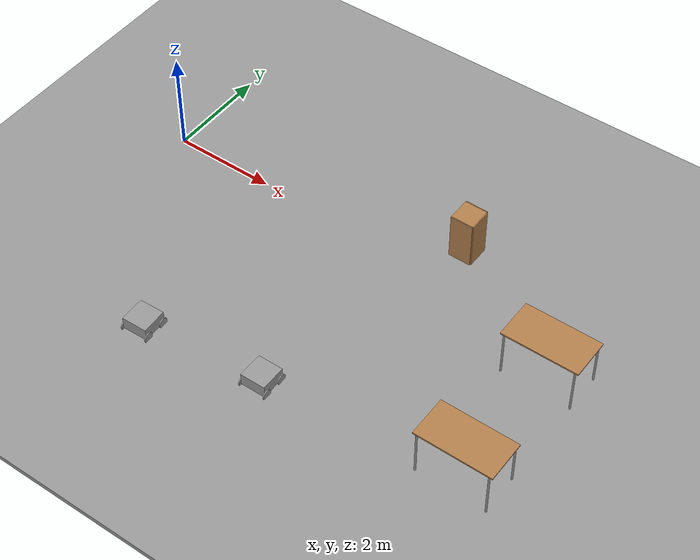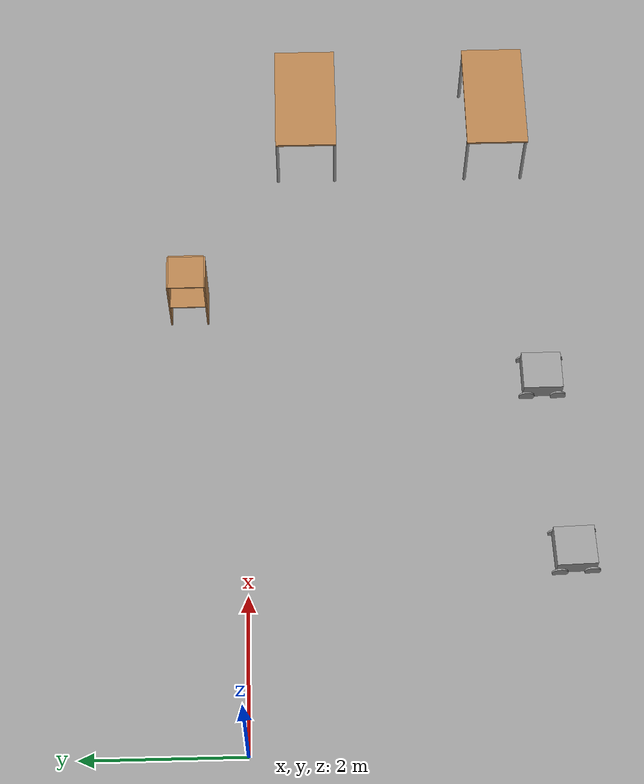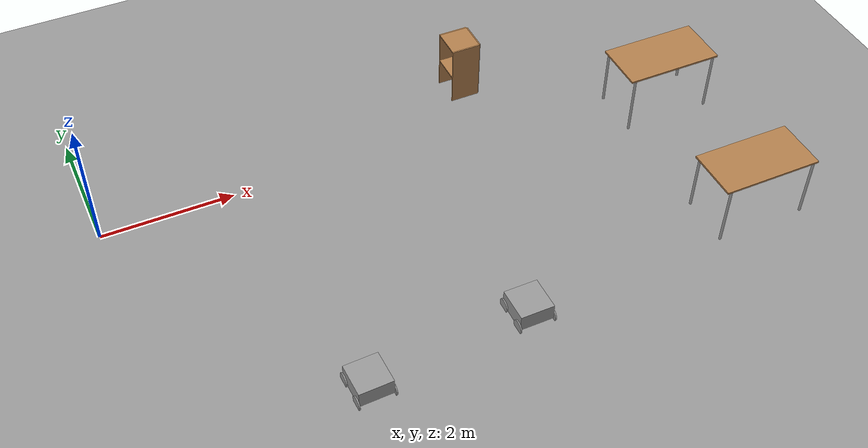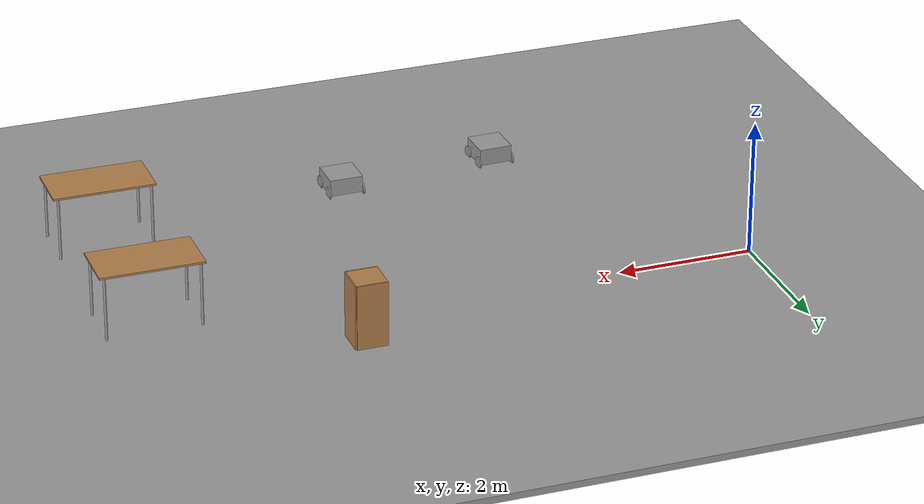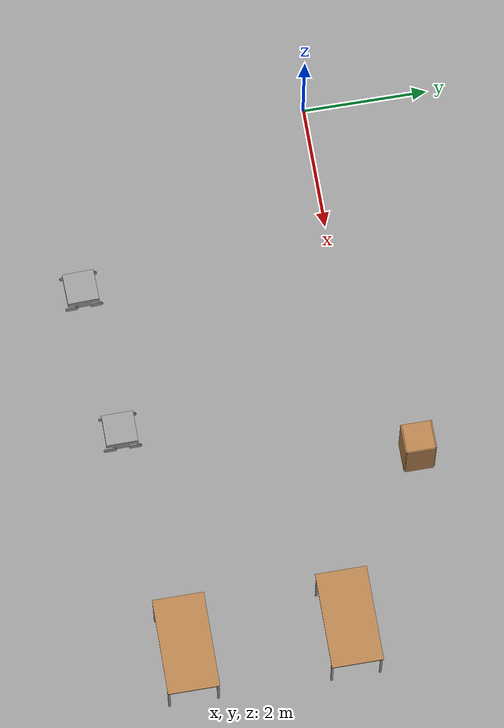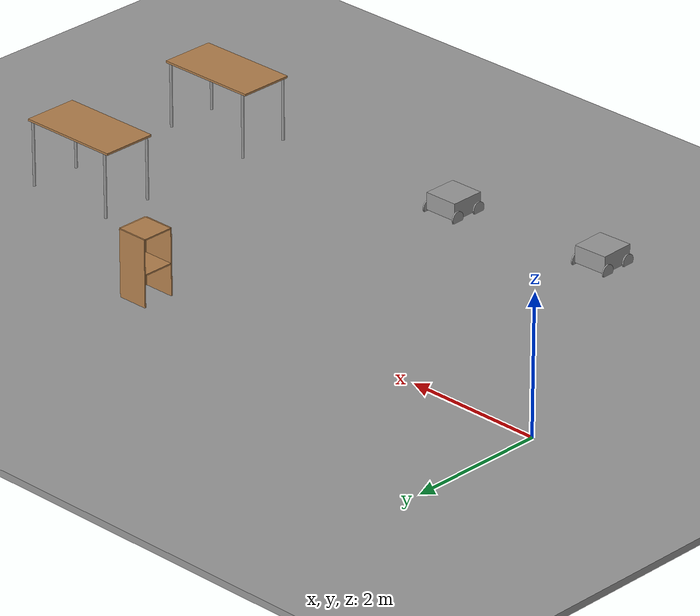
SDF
<sdf version="1.7">
 <world name="default">
  <model name="ground_plane">
   <static>1</static>
   <link name="link">
    <collision name="collision">
     <geometry><plane><normal>0 0 1</normal><size>100 100</size></plane></geometry>
     <surface>
      <contact><collide_bitmask>65535</collide_bitmask></contact>
      <friction><ode><mu>100</mu><mu2>50</mu2></ode></friction>
     </surface>
    </collision>
    <visual name="visual">
     <cast_shadows>0</cast_shadows>
     <geometry><plane><normal>0 0 1</normal><size>100 100</size></plane></geometry>
     <material>
      <script><uri>file://media/materials/scripts/gazebo.material</uri><name>Gazebo/Grey</name></script>
     </material>
    </visual>
   </link>
  </model>
  <model name="ground_plane_0">
   <static>1</static>
   <link name="link">
    <collision name="collision">
     <geometry><plane><normal>0 0 1</normal><size>100 100</size></plane></geometry>
     <surface>
      <contact><collide_bitmask>65535</collide_bitmask></contact>
      <friction><ode><mu>100</mu><mu2>50</mu2></ode></friction>
     </surface>
    </collision>
    <visual name="visual">
     <cast_shadows>0</cast_shadows>
     <geometry><plane><normal>0 0 1</normal><size>100 100</size></plane></geometry>
     <material>
      <script><uri>file://media/materials/scripts/gazebo.material</uri><name>Gazebo/Grey</name></script>
     </material>
    </visual>
   </link>
   <pose>9.22841 12.0339 0 0 -0 0</pose>
  </model>
  <model name="cabinet">
   <static>1</static>
   <link name="cabinet_bottom_plate">
    <inertial>
     <pose>0 0 -1 0 -0 0</pose>
     <inertia><ixx>2.05</ixx><ixy>0</ixy><ixz>0</ixz><iyy>2.05</iyy><iyz>0</iyz><izz>2.05</izz></inertia>
     <mass>25</mass>
    </inertial>
    <collision name="cabinet_bottom_plate_geom">
     <pose>0 0 0.01 0 -0 0</pose>
     <geometry><box><size>0.45 0.45 0.02</size></box></geometry>
    </collision>
    <visual name="cabinet_bottom_plate_geom_visual">
     <pose>0 0 0.01 0 -0 0</pose>
     <geometry><box><size>0.45 0.45 0.02</size></box></geometry>
     <material>
      <script><uri>file://media/materials/scripts/gazebo.material</uri><name>Gazebo/Wood</name></script>
     </material>
    </visual>
    <collision name="cabinet_bottom_plate_geom_cabinet_back_plate">
     <pose>0.235 0 0.51 0 -0 0</pose>
     <geometry><box><size>0.02 0.45 1.02</size></box></geometry>
    </collision>
    <visual name="cabinet_bottom_plate_geom_cabinet_back_plate_visual">
     <pose>0.235 0 0.51 0 -0 0</pose>
     <geometry><box><size>0.02 0.45 1.02</size></box></geometry>
     <material>
      <script><uri>file://media/materials/scripts/gazebo.material</uri><name>Gazebo/Wood</name></script>
     </material>
    </visual>
    <collision name="cabinet_bottom_plate_geom_cabinet_left_plate">
     <pose>0 0.235 0.51 0 -0 0</pose>
     <geometry><box><size>0.45 0.02 1.02</size></box></geometry>
    </collision>
    <visual name="cabinet_bottom_plate_geom_cabinet_left_plate_visual">
     <pose>0 0.235 0.51 0 -0 0</pose>
     <geometry><box><size>0.45 0.02 1.02</size></box></geometry>
     <material>
      <script><uri>file://media/materials/scripts/gazebo.material</uri><name>Gazebo/Wood</name></script>
     </material>
    </visual>
    <collision name="cabinet_bottom_plate_geom_cabinet_middle_plate">
     <pose>0 0 0.51 0 -0 0</pose>
     <geometry><box><size>0.45 0.45 0.02</size></box></geometry>
    </collision>
    <visual name="cabinet_bottom_plate_geom_cabinet_middle_plate_visual">
     <pose>0 0 0.51 0 -0 0</pose>
     <geometry><box><size>0.45 0.45 0.02</size></box></geometry>
     <material>
      <script><uri>file://media/materials/scripts/gazebo.material</uri><name>Gazebo/Wood</name></script>
     </material>
    </visual>
    <collision name="cabinet_bottom_plate_geom_cabinet_right_plate">
     <pose>0 -0.235 0.51 0 -0 0</pose>
     <geometry><box><size>0.45 0.02 1.02</size></box></geometry>
    </collision>
    <visual name="cabinet_bottom_plate_geom_cabinet_right_plate_visual">
     <pose>0 -0.235 0.51 0 -0 0</pose>
     <geometry><box><size>0.45 0.02 1.02</size></box></geometry>
     <material>
      <script><uri>file://media/materials/scripts/gazebo.material</uri><name>Gazebo/Wood</name></script>
     </material>
    </visual>
    <collision name="cabinet_bottom_plate_geom_cabinet_top_plate">
     <pose>0 0 1.01 0 -0 0</pose>
     <geometry><box><size>0.45 0.45 0.02</size></box></geometry>
    </collision>
    <visual name="cabinet_bottom_plate_geom_cabinet_top_plate_visual">
     <pose>0 0 1.01 0 -0 0</pose>
     <geometry><box><size>0.45 0.45 0.02</size></box></geometry>
     <material>
      <script><uri>file://media/materials/scripts/gazebo.material</uri><name>Gazebo/Wood</name></script>
     </material>
    </visual>
   </link>
   <pose>6.0025 0.743217 0 0 -0 0</pose>
  </model>
  <model name="table">
   <static>1</static>
   <link name="link">
    <collision name="surface">
     <pose>0 0 1 0 -0 0</pose>
     <geometry><box><size>1.5 0.8 0.03</size></box></geometry>
     <surface><friction><ode><mu>0.6</mu><mu2>0.6</mu2></ode></friction></surface>
    </collision>
    <visual name="visual1">
     <pose>0 0 1 0 -0 0</pose>
     <geometry><box><size>1.5 0.8 0.03</size></box></geometry>
     <material>
      <script><uri>file://media/materials/scripts/gazebo.material</uri><name>Gazebo/Wood</name></script>
     </material>
    </visual>
    <collision name="front_left_leg">
     <pose>0.68 0.38 0.5 0 -0 0</pose>
     <geometry><cylinder><radius>0.02</radius><length>1</length></cylinder></geometry>
    </collision>
    <visual name="front_left_leg">
     <pose>0.68 0.38 0.5 0 -0 0</pose>
     <geometry><cylinder><radius>0.02</radius><length>1</length></cylinder></geometry>
     <material>
      <script><uri>file://media/materials/scripts/gazebo.material</uri><name>Gazebo/Grey</name></script>
     </material>
    </visual>
    <collision name="front_right_leg">
     <pose>0.68 -0.38 0.5 0 -0 0</pose>
     <geometry><cylinder><radius>0.02</radius><length>1</length></cylinder></geometry>
    </collision>
    <visual name="front_right_leg">
     <pose>0.68 -0.38 0.5 0 -0 0</pose>
     <geometry><cylinder><radius>0.02</radius><length>1</length></cylinder></geometry>
     <material>
      <script><uri>file://media/materials/scripts/gazebo.material</uri><name>Gazebo/Grey</name></script>
     </material>
    </visual>
    <collision name="back_right_leg">
     <pose>-0.68 -0.38 0.5 0 -0 0</pose>
     <geometry><cylinder><radius>0.02</radius><length>1</length></cylinder></geometry>
    </collision>
    <visual name="back_right_leg">
     <pose>-0.68 -0.38 0.5 0 -0 0</pose>
     <geometry><cylinder><radius>0.02</radius><length>1</length></cylinder></geometry>
     <material>
      <script><uri>file://media/materials/scripts/gazebo.material</uri><name>Gazebo/Grey</name></script>
     </material>
    </visual>
    <collision name="back_left_leg">
     <pose>-0.68 0.38 0.5 0 -0 0</pose>
     <geometry><cylinder><radius>0.02</radius><length>1</length></cylinder></geometry>
    </collision>
    <visual name="back_left_leg">
     <pose>-0.68 0.38 0.5 0 -0 0</pose>
     <geometry><cylinder><radius>0.02</radius><length>1</length></cylinder></geometry>
     <material>
      <script><uri>file://media/materials/scripts/gazebo.material</uri><name>Gazebo/Grey</name></script>
     </material>
    </visual>
   </link>
   <pose>8.6565 -0.81394 0 0 -0 0</pose>
  </model>
  <model name="table_0">
   <static>1</static>
   <link name="link">
    <collision name="surface">
     <pose>0 0 1 0 -0 0</pose>
     <geometry><box><size>1.5 0.8 0.03</size></box></geometry>
     <surface><friction><ode><mu>0.6</mu><mu2>0.6</mu2></ode></friction></surface>
    </collision>
    <visual name="visual1">
     <pose>0 0 1 0 -0 0</pose>
     <geometry><box><size>1.5 0.8 0.03</size></box></geometry>
     <material>
      <script><uri>file://media/materials/scripts/gazebo.material</uri><name>Gazebo/Wood</name></script>
     </material>
    </visual>
    <collision name="front_left_leg">
     <pose>0.68 0.38 0.5 0 -0 0</pose>
     <geometry><cylinder><radius>0.02</radius><length>1</length></cylinder></geometry>
    </collision>
    <visual name="front_left_leg">
     <pose>0.68 0.38 0.5 0 -0 0</pose>
     <geometry><cylinder><radius>0.02</radius><length>1</length></cylinder></geometry>
     <material>
      <script><uri>file://media/materials/scripts/gazebo.material</uri><name>Gazebo/Grey</name></script>
     </material>
    </visual>
    <collision name="front_right_leg">
     <pose>0.68 -0.38 0.5 0 -0 0</pose>
     <geometry><cylinder><radius>0.02</radius><length>1</length></cylinder></geometry>
    </collision>
    <visual name="front_right_leg">
     <pose>0.68 -0.38 0.5 0 -0 0</pose>
     <geometry><cylinder><radius>0.02</radius><length>1</length></cylinder></geometry>
     <material>
      <script><uri>file://media/materials/scripts/gazebo.material</uri><name>Gazebo/Grey</name></script>
     </material>
    </visual>
    <collision name="back_right_leg">
     <pose>-0.68 -0.38 0.5 0 -0 0</pose>
     <geometry><cylinder><radius>0.02</radius><length>1</length></cylinder></geometry>
    </collision>
    <visual name="back_right_leg">
     <pose>-0.68 -0.38 0.5 0 -0 0</pose>
     <geometry><cylinder><radius>0.02</radius><length>1</length></cylinder></geometry>
     <material>
      <script><uri>file://media/materials/scripts/gazebo.material</uri><name>Gazebo/Grey</name></script>
     </material>
    </visual>
    <collision name="back_left_leg">
     <pose>-0.68 0.38 0.5 0 -0 0</pose>
     <geometry><cylinder><radius>0.02</radius><length>1</length></cylinder></geometry>
    </collision>
    <visual name="back_left_leg">
     <pose>-0.68 0.38 0.5 0 -0 0</pose>
     <geometry><cylinder><radius>0.02</radius><length>1</length></cylinder></geometry>
     <material>
      <script><uri>file://media/materials/scripts/gazebo.material</uri><name>Gazebo/Grey</name></script>
     </material>
    </visual>
   </link>
   <pose>8.64335 -3.33372 0 0 -0 0</pose>
  </model>
  <model name="four_wheeled_robot">
   <link name="link_2">
    <inertial>
     <mass>1</mass>
     <inertia>
      <ixx>0.166667</ixx>
      <ixy>0</ixy>
      <ixz>0</ixz>
      <iyy>0.166667</iyy>
      <iyz>0</iyz>
      <izz>0.166667</izz>
     </inertia>
    </inertial>
    <pose>-9.6e-05 0 0.05 0 -0 0</pose>
    <visual name="visual">
     <geometry><box><size>0.5 0.5 0.25</size></box></geometry>
     <material>
      <lighting>1</lighting>
      <script><uri>file://media/materials/scripts/gazebo.material</uri><name>Gazebo/Grey</name></script>
      <shader type="pixel"><normal_map>__default__</normal_map></shader>
      <ambient>0.3 0.3 0.3 1</ambient>
      <diffuse>0.7 0.7 0.7 1</diffuse>
      <specular>0.01 0.01 0.01 1</specular>
      <emissive>0 0 0 1</emissive>
     </material>
    </visual>
    <collision name="collision">
     <geometry><box><size>0.5 0.5 0.25</size></box></geometry>
     <surface>
      <friction>
       <ode><mu>1</mu><mu2>1</mu2><fdir1>0 0 0</fdir1><slip1>0</slip1><slip2>0</slip2></ode>
       <torsional>
        <coefficient>1</coefficient>
        <patch_radius>0</patch_radius>
        <surface_radius>0</surface_radius>
        <use_patch_radius>1</use_patch_radius>
        <ode><slip>0</slip></ode>
       </torsional>
      </friction>
      <bounce><restitution_coefficient>0</restitution_coefficient><threshold>1e+06</threshold></bounce>
      <contact>
       <collide_without_contact>0</collide_without_contact>
       <collide_without_contact_bitmask>1</collide_without_contact_bitmask>
       <collide_bitmask>1</collide_bitmask>
       <ode>
        <soft_cfm>0</soft_cfm>
        <soft_erp>0.2</soft_erp>
        <kp>1e+13</kp>
        <kd>1</kd>
        <max_vel>0.01</max_vel>
        <min_depth>0</min_depth>
       </ode>
       <bullet>
        <split_impulse>1</split_impulse>
        <split_impulse_penetration_threshold>-0.01</split_impulse_penetration_threshold>
        <soft_cfm>0</soft_cfm>
        <soft_erp>0.2</soft_erp>
        <kp>1e+13</kp>
        <kd>1</kd>
       </bullet>
      </contact>
     </surface>
    </collision>
   </link>
   <link name="link_3">
    <inertial>
     <mass>1</mass>
     <inertia><ixx>0.145833</ixx><ixy>0</ixy><ixz>0</ixz><iyy>0.145833</iyy><iyz>0</iyz><izz>0.125</izz></inertia>
    </inertial>
    <pose>0.260404 -0.2 -0.05 1.5707 0 1.5707</pose>
    <visual name="visual">
     <geometry><cylinder><radius>0.1</radius><length>0.02</length></cylinder></geometry>
     <material>
      <lighting>1</lighting>
      <script><uri>file://media/materials/scripts/gazebo.material</uri><name>Gazebo/Grey</name></script>
      <shader type="pixel"><normal_map>__default__</normal_map></shader>
      <ambient>0.3 0.3 0.3 1</ambient>
      <diffuse>0.7 0.7 0.7 1</diffuse>
      <specular>0.01 0.01 0.01 1</specular>
      <emissive>0 0 0 1</emissive>
     </material>
    </visual>
    <collision name="collision">
     <geometry><cylinder><radius>0.1</radius><length>0.02</length></cylinder></geometry>
     <surface>
      <friction>
       <ode><mu>1</mu><mu2>1</mu2><fdir1>0 0 0</fdir1><slip1>0</slip1><slip2>0</slip2></ode>
       <torsional>
        <coefficient>1</coefficient>
        <patch_radius>0</patch_radius>
        <surface_radius>0</surface_radius>
        <use_patch_radius>1</use_patch_radius>
        <ode><slip>0</slip></ode>
       </torsional>
      </friction>
      <bounce><restitution_coefficient>0</restitution_coefficient><threshold>1e+06</threshold></bounce>
      <contact>
       <collide_without_contact>0</collide_without_contact>
       <collide_without_contact_bitmask>1</collide_without_contact_bitmask>
       <collide_bitmask>1</collide_bitmask>
       <ode>
        <soft_cfm>0</soft_cfm>
        <soft_erp>0.2</soft_erp>
        <kp>1e+13</kp>
        <kd>1</kd>
        <max_vel>0.01</max_vel>
        <min_depth>0</min_depth>
       </ode>
       <bullet>
        <split_impulse>1</split_impulse>
        <split_impulse_penetration_threshold>-0.01</split_impulse_penetration_threshold>
        <soft_cfm>0</soft_cfm>
        <soft_erp>0.2</soft_erp>
        <kp>1e+13</kp>
        <kd>1</kd>
       </bullet>
      </contact>
     </surface>
    </collision>
   </link>
   <link name="link_3_clone">
    <inertial>
     <mass>1</mass>
     <inertia><ixx>0.145833</ixx><ixy>0</ixy><ixz>0</ixz><iyy>0.145833</iyy><iyz>0</iyz><izz>0.125</izz></inertia>
    </inertial>
    <pose>-0.260115 0.2 -0.05 1.5707 0 1.5707</pose>
    <visual name="visual">
     <geometry><cylinder><radius>0.1</radius><length>0.02</length></cylinder></geometry>
     <material>
      <lighting>1</lighting>
      <script><uri>file://media/materials/scripts/gazebo.material</uri><name>Gazebo/Grey</name></script>
      <shader type="pixel"><normal_map>__default__</normal_map></shader>
      <ambient>0.3 0.3 0.3 1</ambient>
      <diffuse>0.7 0.7 0.7 1</diffuse>
      <specular>0.01 0.01 0.01 1</specular>
      <emissive>0 0 0 1</emissive>
     </material>
    </visual>
    <collision name="collision">
     <geometry><cylinder><radius>0.1</radius><length>0.02</length></cylinder></geometry>
     <surface>
      <friction>
       <ode><mu>1</mu><mu2>1</mu2><fdir1>0 0 0</fdir1><slip1>0</slip1><slip2>0</slip2></ode>
       <torsional>
        <coefficient>1</coefficient>
        <patch_radius>0</patch_radius>
        <surface_radius>0</surface_radius>
        <use_patch_radius>1</use_patch_radius>
        <ode><slip>0</slip></ode>
       </torsional>
      </friction>
      <bounce><restitution_coefficient>0</restitution_coefficient><threshold>1e+06</threshold></bounce>
      <contact>
       <collide_without_contact>0</collide_without_contact>
       <collide_without_contact_bitmask>1</collide_without_contact_bitmask>
       <collide_bitmask>1</collide_bitmask>
       <ode>
        <soft_cfm>0</soft_cfm>
        <soft_erp>0.2</soft_erp>
        <kp>1e+13</kp>
        <kd>1</kd>
        <max_vel>0.01</max_vel>
        <min_depth>0</min_depth>
       </ode>
       <bullet>
        <split_impulse>1</split_impulse>
        <split_impulse_penetration_threshold>-0.01</split_impulse_penetration_threshold>
        <soft_cfm>0</soft_cfm>
        <soft_erp>0.2</soft_erp>
        <kp>1e+13</kp>
        <kd>1</kd>
       </bullet>
      </contact>
     </surface>
    </collision>
   </link>
   <link name="link_3_clone_0">
    <inertial>
     <mass>1</mass>
     <inertia><ixx>0.145833</ixx><ixy>0</ixy><ixz>0</ixz><iyy>0.145833</iyy><iyz>0</iyz><izz>0.125</izz></inertia>
    </inertial>
    <pose>-0.260115 -0.2 -0.05 1.5707 0 1.5707</pose>
    <visual name="visual">
     <geometry><cylinder><radius>0.1</radius><length>0.02</length></cylinder></geometry>
     <material>
      <lighting>1</lighting>
      <script><uri>file://media/materials/scripts/gazebo.material</uri><name>Gazebo/Grey</name></script>
      <shader type="pixel"><normal_map>__default__</normal_map></shader>
      <ambient>0.3 0.3 0.3 1</ambient>
      <diffuse>0.7 0.7 0.7 1</diffuse>
      <specular>0.01 0.01 0.01 1</specular>
      <emissive>0 0 0 1</emissive>
     </material>
    </visual>
    <collision name="collision">
     <geometry><cylinder><radius>0.1</radius><length>0.02</length></cylinder></geometry>
     <surface>
      <friction>
       <ode><mu>1</mu><mu2>1</mu2><fdir1>0 0 0</fdir1><slip1>0</slip1><slip2>0</slip2></ode>
       <torsional>
        <coefficient>1</coefficient>
        <patch_radius>0</patch_radius>
        <surface_radius>0</surface_radius>
        <use_patch_radius>1</use_patch_radius>
        <ode><slip>0</slip></ode>
       </torsional>
      </friction>
      <bounce><restitution_coefficient>0</restitution_coefficient><threshold>1e+06</threshold></bounce>
      <contact>
       <collide_without_contact>0</collide_without_contact>
       <collide_without_contact_bitmask>1</collide_without_contact_bitmask>
       <collide_bitmask>1</collide_bitmask>
       <ode>
        <soft_cfm>0</soft_cfm>
        <soft_erp>0.2</soft_erp>
        <kp>1e+13</kp>
        <kd>1</kd>
        <max_vel>0.01</max_vel>
        <min_depth>0</min_depth>
       </ode>
       <bullet>
        <split_impulse>1</split_impulse>
        <split_impulse_penetration_threshold>-0.01</split_impulse_penetration_threshold>
        <soft_cfm>0</soft_cfm>
        <soft_erp>0.2</soft_erp>
        <kp>1e+13</kp>
        <kd>1</kd>
       </bullet>
      </contact>
     </surface>
    </collision>
   </link>
   <link name="link_3_clone_1">
    <inertial>
     <mass>1</mass>
     <inertia><ixx>0.145833</ixx><ixy>0</ixy><ixz>0</ixz><iyy>0.145833</iyy><iyz>0</iyz><izz>0.125</izz></inertia>
    </inertial>
    <pose>0.259923 0.2 -0.05 1.5707 0 1.5707</pose>
    <visual name="visual">
     <geometry><cylinder><radius>0.1</radius><length>0.02</length></cylinder></geometry>
     <material>
      <lighting>1</lighting>
      <script><uri>file://media/materials/scripts/gazebo.material</uri><name>Gazebo/Grey</name></script>
      <shader type="pixel"><normal_map>__default__</normal_map></shader>
      <ambient>0.3 0.3 0.3 1</ambient>
      <diffuse>0.7 0.7 0.7 1</diffuse>
      <specular>0.01 0.01 0.01 1</specular>
      <emissive>0 0 0 1</emissive>
     </material>
    </visual>
    <collision name="collision">
     <geometry><cylinder><radius>0.1</radius><length>0.02</length></cylinder></geometry>
     <surface>
      <friction>
       <ode><mu>1</mu><mu2>1</mu2><fdir1>0 0 0</fdir1><slip1>0</slip1><slip2>0</slip2></ode>
       <torsional>
        <coefficient>1</coefficient>
        <patch_radius>0</patch_radius>
        <surface_radius>0</surface_radius>
        <use_patch_radius>1</use_patch_radius>
        <ode><slip>0</slip></ode>
       </torsional>
      </friction>
      <bounce><restitution_coefficient>0</restitution_coefficient><threshold>1e+06</threshold></bounce>
      <contact>
       <collide_without_contact>0</collide_without_contact>
       <collide_without_contact_bitmask>1</collide_without_contact_bitmask>
       <collide_bitmask>1</collide_bitmask>
       <ode>
        <soft_cfm>0</soft_cfm>
        <soft_erp>0.2</soft_erp>
        <kp>1e+13</kp>
        <kd>1</kd>
        <max_vel>0.01</max_vel>
        <min_depth>0</min_depth>
       </ode>
       <bullet>
        <split_impulse>1</split_impulse>
        <split_impulse_penetration_threshold>-0.01</split_impulse_penetration_threshold>
        <soft_cfm>0</soft_cfm>
        <soft_erp>0.2</soft_erp>
        <kp>1e+13</kp>
        <kd>1</kd>
       </bullet>
      </contact>
     </surface>
    </collision>
   </link>
   <joint name="link_2_JOINT_0" type="revolute">
    <parent>link_2</parent>
    <child>link_3</child>
    <axis>
     <xyz>0 0 1</xyz>
     <limit>
      <lower>-1.79769e+308</lower>
      <upper>1.79769e+308</upper>
      <effort>-1</effort>
      <velocity>-1</velocity>
     </limit>
     <dynamics>
      <spring_reference>0</spring_reference>
      <spring_stiffness>0</spring_stiffness>
      <damping>0</damping>
      <friction>0</friction>
     </dynamics>
    </axis>
    <physics>
     <ode><limit><cfm>0</cfm><erp>0.2</erp></limit><suspension><cfm>0</cfm><erp>0.2</erp></suspension></ode>
    </physics>
   </joint>
   <joint name="link_2_JOINT_1" type="revolute">
    <parent>link_2</parent>
    <child>link_3_clone_1</child>
    <axis>
     <xyz>0 0 1</xyz>
     <limit>
      <lower>-1.79769e+308</lower>
      <upper>1.79769e+308</upper>
      <effort>-1</effort>
      <velocity>-1</velocity>
     </limit>
     <dynamics>
      <spring_reference>0</spring_reference>
      <spring_stiffness>0</spring_stiffness>
      <damping>0</damping>
      <friction>0</friction>
     </dynamics>
    </axis>
    <physics>
     <ode><limit><cfm>0</cfm><erp>0.2</erp></limit><suspension><cfm>0</cfm><erp>0.2</erp></suspension></ode>
    </physics>
   </joint>
   <joint name="link_2_JOINT_2" type="revolute">
    <parent>link_2</parent>
    <child>link_3_clone_0</child>
    <axis>
     <xyz>0 0 1</xyz>
     <limit>
      <lower>-1.79769e+308</lower>
      <upper>1.79769e+308</upper>
      <effort>-1</effort>
      <velocity>-1</velocity>
     </limit>
     <dynamics>
      <spring_reference>0</spring_reference>
      <spring_stiffness>0</spring_stiffness>
      <damping>0</damping>
     </dynamics>
    </axis>
    <physics>
     <ode><limit><cfm>0</cfm><erp>0.2</erp></limit><suspension><cfm>0</cfm><erp>0.2</erp></suspension></ode>
    </physics>
   </joint>
   <joint name="link_2_JOINT_3" type="revolute">
    <parent>link_2</parent>
    <child>link_3_clone</child>
    <axis>
     <xyz>0 0 1</xyz>
     <limit>
      <lower>-1.79769e+308</lower>
      <upper>1.79769e+308</upper>
      <effort>-1</effort>
      <velocity>-1</velocity>
     </limit>
     <dynamics>
      <spring_reference>0</spring_reference>
      <spring_stiffness>0</spring_stiffness>
      <damping>0</damping>
     </dynamics>
    </axis>
    <physics>
     <ode><limit><cfm>0</cfm><erp>0.2</erp></limit><suspension><cfm>0</cfm><erp>0.2</erp></suspension></ode>
    </physics>
   </joint>
   <static>0</static>
   <pose>4.87152 -3.76249 0.15 7e-06 -0 0.006117</pose>
  </model>
  <model name="four_wheeled_robot_0">
   <link name="link_2">
    <inertial>
     <mass>1</mass>
     <inertia>
      <ixx>0.166667</ixx>
      <ixy>0</ixy>
      <ixz>0</ixz>
      <iyy>0.166667</iyy>
      <iyz>0</iyz>
      <izz>0.166667</izz>
     </inertia>
    </inertial>
    <pose>-9.6e-05 0 0.05 0 -0 0</pose>
    <visual name="visual">
     <geometry><box><size>0.5 0.5 0.25</size></box></geometry>
     <material>
      <lighting>1</lighting>
      <script><uri>file://media/materials/scripts/gazebo.material</uri><name>Gazebo/Grey</name></script>
      <shader type="pixel"><normal_map>__default__</normal_map></shader>
      <ambient>0.3 0.3 0.3 1</ambient>
      <diffuse>0.7 0.7 0.7 1</diffuse>
      <specular>0.01 0.01 0.01 1</specular>
      <emissive>0 0 0 1</emissive>
     </material>
    </visual>
    <collision name="collision">
     <geometry><box><size>0.5 0.5 0.25</size></box></geometry>
     <surface>
      <friction>
       <ode><mu>1</mu><mu2>1</mu2><fdir1>0 0 0</fdir1><slip1>0</slip1><slip2>0</slip2></ode>
       <torsional>
        <coefficient>1</coefficient>
        <patch_radius>0</patch_radius>
        <surface_radius>0</surface_radius>
        <use_patch_radius>1</use_patch_radius>
        <ode><slip>0</slip></ode>
       </torsional>
      </friction>
      <bounce><restitution_coefficient>0</restitution_coefficient><threshold>1e+06</threshold></bounce>
      <contact>
       <collide_without_contact>0</collide_without_contact>
       <collide_without_contact_bitmask>1</collide_without_contact_bitmask>
       <collide_bitmask>1</collide_bitmask>
       <ode>
        <soft_cfm>0</soft_cfm>
        <soft_erp>0.2</soft_erp>
        <kp>1e+13</kp>
        <kd>1</kd>
        <max_vel>0.01</max_vel>
        <min_depth>0</min_depth>
       </ode>
       <bullet>
        <split_impulse>1</split_impulse>
        <split_impulse_penetration_threshold>-0.01</split_impulse_penetration_threshold>
        <soft_cfm>0</soft_cfm>
        <soft_erp>0.2</soft_erp>
        <kp>1e+13</kp>
        <kd>1</kd>
       </bullet>
      </contact>
     </surface>
    </collision>
   </link>
   <link name="link_3">
    <inertial>
     <mass>1</mass>
     <inertia><ixx>0.145833</ixx><ixy>0</ixy><ixz>0</ixz><iyy>0.145833</iyy><iyz>0</iyz><izz>0.125</izz></inertia>
    </inertial>
    <pose>0.260404 -0.2 -0.05 1.5707 0 1.5707</pose>
    <visual name="visual">
     <geometry><cylinder><radius>0.1</radius><length>0.02</length></cylinder></geometry>
     <material>
      <lighting>1</lighting>
      <script><uri>file://media/materials/scripts/gazebo.material</uri><name>Gazebo/Grey</name></script>
      <shader type="pixel"><normal_map>__default__</normal_map></shader>
      <ambient>0.3 0.3 0.3 1</ambient>
      <diffuse>0.7 0.7 0.7 1</diffuse>
      <specular>0.01 0.01 0.01 1</specular>
      <emissive>0 0 0 1</emissive>
     </material>
    </visual>
    <collision name="collision">
     <geometry><cylinder><radius>0.1</radius><length>0.02</length></cylinder></geometry>
     <surface>
      <friction>
       <ode><mu>1</mu><mu2>1</mu2><fdir1>0 0 0</fdir1><slip1>0</slip1><slip2>0</slip2></ode>
       <torsional>
        <coefficient>1</coefficient>
        <patch_radius>0</patch_radius>
        <surface_radius>0</surface_radius>
        <use_patch_radius>1</use_patch_radius>
        <ode><slip>0</slip></ode>
       </torsional>
      </friction>
      <bounce><restitution_coefficient>0</restitution_coefficient><threshold>1e+06</threshold></bounce>
      <contact>
       <collide_without_contact>0</collide_without_contact>
       <collide_without_contact_bitmask>1</collide_without_contact_bitmask>
       <collide_bitmask>1</collide_bitmask>
       <ode>
        <soft_cfm>0</soft_cfm>
        <soft_erp>0.2</soft_erp>
        <kp>1e+13</kp>
        <kd>1</kd>
        <max_vel>0.01</max_vel>
        <min_depth>0</min_depth>
       </ode>
       <bullet>
        <split_impulse>1</split_impulse>
        <split_impulse_penetration_threshold>-0.01</split_impulse_penetration_threshold>
        <soft_cfm>0</soft_cfm>
        <soft_erp>0.2</soft_erp>
        <kp>1e+13</kp>
        <kd>1</kd>
       </bullet>
      </contact>
     </surface>
    </collision>
   </link>
   <link name="link_3_clone">
    <inertial>
     <mass>1</mass>
     <inertia><ixx>0.145833</ixx><ixy>0</ixy><ixz>0</ixz><iyy>0.145833</iyy><iyz>0</iyz><izz>0.125</izz></inertia>
    </inertial>
    <pose>-0.260115 0.2 -0.05 1.5707 0 1.5707</pose>
    <visual name="visual">
     <geometry><cylinder><radius>0.1</radius><length>0.02</length></cylinder></geometry>
     <material>
      <lighting>1</lighting>
      <script><uri>file://media/materials/scripts/gazebo.material</uri><name>Gazebo/Grey</name></script>
      <shader type="pixel"><normal_map>__default__</normal_map></shader>
      <ambient>0.3 0.3 0.3 1</ambient>
      <diffuse>0.7 0.7 0.7 1</diffuse>
      <specular>0.01 0.01 0.01 1</specular>
      <emissive>0 0 0 1</emissive>
     </material>
    </visual>
    <collision name="collision">
     <geometry><cylinder><radius>0.1</radius><length>0.02</length></cylinder></geometry>
     <surface>
      <friction>
       <ode><mu>1</mu><mu2>1</mu2><fdir1>0 0 0</fdir1><slip1>0</slip1><slip2>0</slip2></ode>
       <torsional>
        <coefficient>1</coefficient>
        <patch_radius>0</patch_radius>
        <surface_radius>0</surface_radius>
        <use_patch_radius>1</use_patch_radius>
        <ode><slip>0</slip></ode>
       </torsional>
      </friction>
      <bounce><restitution_coefficient>0</restitution_coefficient><threshold>1e+06</threshold></bounce>
      <contact>
       <collide_without_contact>0</collide_without_contact>
       <collide_without_contact_bitmask>1</collide_without_contact_bitmask>
       <collide_bitmask>1</collide_bitmask>
       <ode>
        <soft_cfm>0</soft_cfm>
        <soft_erp>0.2</soft_erp>
        <kp>1e+13</kp>
        <kd>1</kd>
        <max_vel>0.01</max_vel>
        <min_depth>0</min_depth>
       </ode>
       <bullet>
        <split_impulse>1</split_impulse>
        <split_impulse_penetration_threshold>-0.01</split_impulse_penetration_threshold>
        <soft_cfm>0</soft_cfm>
        <soft_erp>0.2</soft_erp>
        <kp>1e+13</kp>
        <kd>1</kd>
       </bullet>
      </contact>
     </surface>
    </collision>
   </link>
   <link name="link_3_clone_0">
    <inertial>
     <mass>1</mass>
     <inertia><ixx>0.145833</ixx><ixy>0</ixy><ixz>0</ixz><iyy>0.145833</iyy><iyz>0</iyz><izz>0.125</izz></inertia>
    </inertial>
    <pose>-0.260115 -0.2 -0.05 1.5707 0 1.5707</pose>
    <visual name="visual">
     <geometry><cylinder><radius>0.1</radius><length>0.02</length></cylinder></geometry>
     <material>
      <lighting>1</lighting>
      <script><uri>file://media/materials/scripts/gazebo.material</uri><name>Gazebo/Grey</name></script>
      <shader type="pixel"><normal_map>__default__</normal_map></shader>
      <ambient>0.3 0.3 0.3 1</ambient>
      <diffuse>0.7 0.7 0.7 1</diffuse>
      <specular>0.01 0.01 0.01 1</specular>
      <emissive>0 0 0 1</emissive>
     </material>
    </visual>
    <collision name="collision">
     <geometry><cylinder><radius>0.1</radius><length>0.02</length></cylinder></geometry>
     <surface>
      <friction>
       <ode><mu>1</mu><mu2>1</mu2><fdir1>0 0 0</fdir1><slip1>0</slip1><slip2>0</slip2></ode>
       <torsional>
        <coefficient>1</coefficient>
        <patch_radius>0</patch_radius>
        <surface_radius>0</surface_radius>
        <use_patch_radius>1</use_patch_radius>
        <ode><slip>0</slip></ode>
       </torsional>
      </friction>
      <bounce><restitution_coefficient>0</restitution_coefficient><threshold>1e+06</threshold></bounce>
      <contact>
       <collide_without_contact>0</collide_without_contact>
       <collide_without_contact_bitmask>1</collide_without_contact_bitmask>
       <collide_bitmask>1</collide_bitmask>
       <ode>
        <soft_cfm>0</soft_cfm>
        <soft_erp>0.2</soft_erp>
        <kp>1e+13</kp>
        <kd>1</kd>
        <max_vel>0.01</max_vel>
        <min_depth>0</min_depth>
       </ode>
       <bullet>
        <split_impulse>1</split_impulse>
        <split_impulse_penetration_threshold>-0.01</split_impulse_penetration_threshold>
        <soft_cfm>0</soft_cfm>
        <soft_erp>0.2</soft_erp>
        <kp>1e+13</kp>
        <kd>1</kd>
       </bullet>
      </contact>
     </surface>
    </collision>
   </link>
   <link name="link_3_clone_1">
    <inertial>
     <mass>1</mass>
     <inertia><ixx>0.145833</ixx><ixy>0</ixy><ixz>0</ixz><iyy>0.145833</iyy><iyz>0</iyz><izz>0.125</izz></inertia>
    </inertial>
    <pose>0.259923 0.2 -0.05 1.5707 0 1.5707</pose>
    <visual name="visual">
     <geometry><cylinder><radius>0.1</radius><length>0.02</length></cylinder></geometry>
     <material>
      <lighting>1</lighting>
      <script><uri>file://media/materials/scripts/gazebo.material</uri><name>Gazebo/Grey</name></script>
      <shader type="pixel"><normal_map>__default__</normal_map></shader>
      <ambient>0.3 0.3 0.3 1</ambient>
      <diffuse>0.7 0.7 0.7 1</diffuse>
      <specular>0.01 0.01 0.01 1</specular>
      <emissive>0 0 0 1</emissive>
     </material>
    </visual>
    <collision name="collision">
     <geometry><cylinder><radius>0.1</radius><length>0.02</length></cylinder></geometry>
     <surface>
      <friction>
       <ode><mu>1</mu><mu2>1</mu2><fdir1>0 0 0</fdir1><slip1>0</slip1><slip2>0</slip2></ode>
       <torsional>
        <coefficient>1</coefficient>
        <patch_radius>0</patch_radius>
        <surface_radius>0</surface_radius>
        <use_patch_radius>1</use_patch_radius>
        <ode><slip>0</slip></ode>
       </torsional>
      </friction>
      <bounce><restitution_coefficient>0</restitution_coefficient><threshold>1e+06</threshold></bounce>
      <contact>
       <collide_without_contact>0</collide_without_contact>
       <collide_without_contact_bitmask>1</collide_without_contact_bitmask>
       <collide_bitmask>1</collide_bitmask>
       <ode>
        <soft_cfm>0</soft_cfm>
        <soft_erp>0.2</soft_erp>
        <kp>1e+13</kp>
        <kd>1</kd>
        <max_vel>0.01</max_vel>
        <min_depth>0</min_depth>
       </ode>
       <bullet>
        <split_impulse>1</split_impulse>
        <split_impulse_penetration_threshold>-0.01</split_impulse_penetration_threshold>
        <soft_cfm>0</soft_cfm>
        <soft_erp>0.2</soft_erp>
        <kp>1e+13</kp>
        <kd>1</kd>
       </bullet>
      </contact>
     </surface>
    </collision>
   </link>
   <joint name="link_2_JOINT_0" type="revolute">
    <parent>link_2</parent>
    <child>link_3</child>
    <axis>
     <xyz>0 0 1</xyz>
     <limit>
      <lower>-1.79769e+308</lower>
      <upper>1.79769e+308</upper>
      <effort>-1</effort>
      <velocity>-1</velocity>
     </limit>
     <dynamics>
      <spring_reference>0</spring_reference>
      <spring_stiffness>0</spring_stiffness>
      <damping>0</damping>
      <friction>0</friction>
     </dynamics>
    </axis>
    <physics>
     <ode><limit><cfm>0</cfm><erp>0.2</erp></limit><suspension><cfm>0</cfm><erp>0.2</erp></suspension></ode>
    </physics>
   </joint>
   <joint name="link_2_JOINT_1" type="revolute">
    <parent>link_2</parent>
    <child>link_3_clone_1</child>
    <axis>
     <xyz>0 0 1</xyz>
     <limit>
      <lower>-1.79769e+308</lower>
      <upper>1.79769e+308</upper>
      <effort>-1</effort>
      <velocity>-1</velocity>
     </limit>
     <dynamics>
      <spring_reference>0</spring_reference>
      <spring_stiffness>0</spring_stiffness>
      <damping>0</damping>
      <friction>0</friction>
     </dynamics>
    </axis>
    <physics>
     <ode><limit><cfm>0</cfm><erp>0.2</erp></limit><suspension><cfm>0</cfm><erp>0.2</erp></suspension></ode>
    </physics>
   </joint>
   <joint name="link_2_JOINT_2" type="revolute">
    <parent>link_2</parent>
    <child>link_3_clone_0</child>
    <axis>
     <xyz>0 0 1</xyz>
     <limit>
      <lower>-1.79769e+308</lower>
      <upper>1.79769e+308</upper>
      <effort>-1</effort>
      <velocity>-1</velocity>
     </limit>
     <dynamics>
      <spring_reference>0</spring_reference>
      <spring_stiffness>0</spring_stiffness>
      <damping>0</damping>
     </dynamics>
    </axis>
    <physics>
     <ode><limit><cfm>0</cfm><erp>0.2</erp></limit><suspension><cfm>0</cfm><erp>0.2</erp></suspension></ode>
    </physics>
   </joint>
   <joint name="link_2_JOINT_3" type="revolute">
    <parent>link_2</parent>
    <child>link_3_clone</child>
    <axis>
     <xyz>0 0 1</xyz>
     <limit>
      <lower>-1.79769e+308</lower>
      <upper>1.79769e+308</upper>
      <effort>-1</effort>
      <velocity>-1</velocity>
     </limit>
     <dynamics>
      <spring_reference>0</spring_reference>
      <spring_stiffness>0</spring_stiffness>
      <damping>0</damping>
     </dynamics>
    </axis>
    <physics>
     <ode><limit><cfm>0</cfm><erp>0.2</erp></limit><suspension><cfm>0</cfm><erp>0.2</erp></suspension></ode>
    </physics>
   </joint>
   <static>0</static>
   <pose>2.46012 -3.99537 0.15 7e-06 -0 0.032102</pose>
  </model>
 </world>
</sdf>
